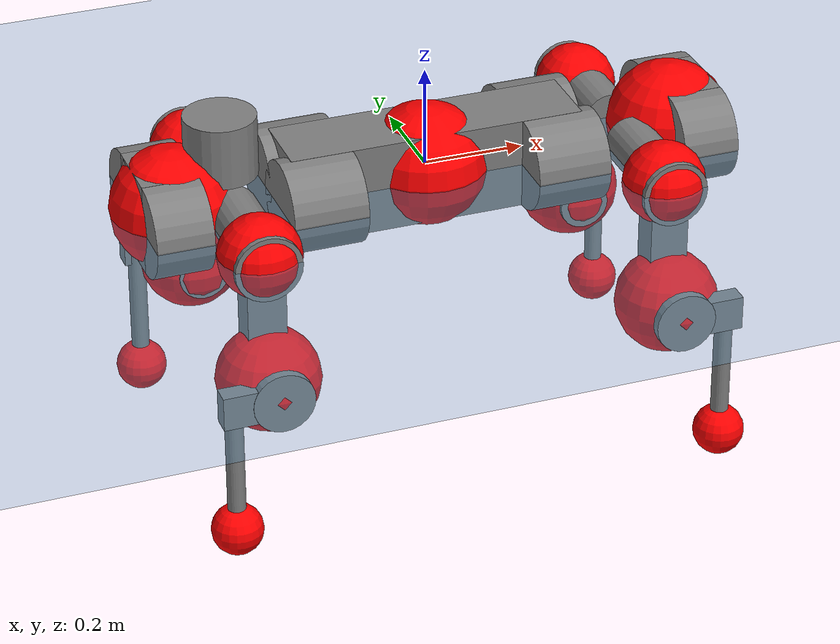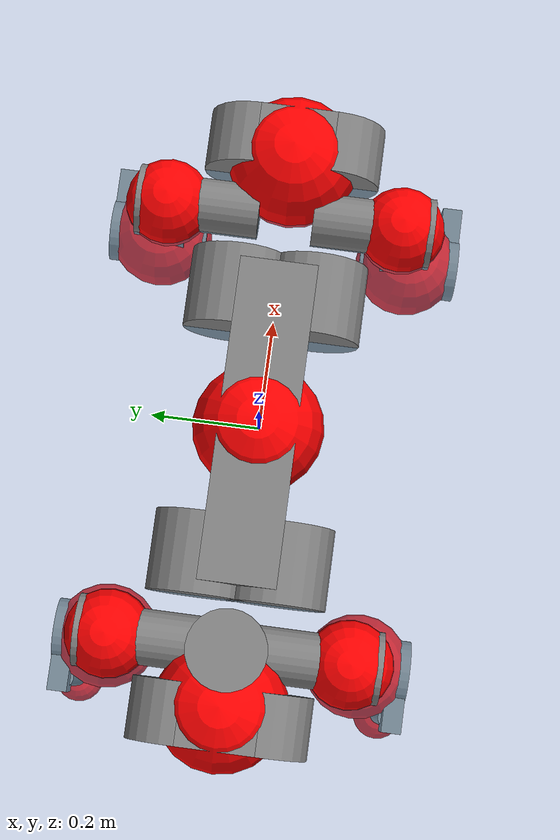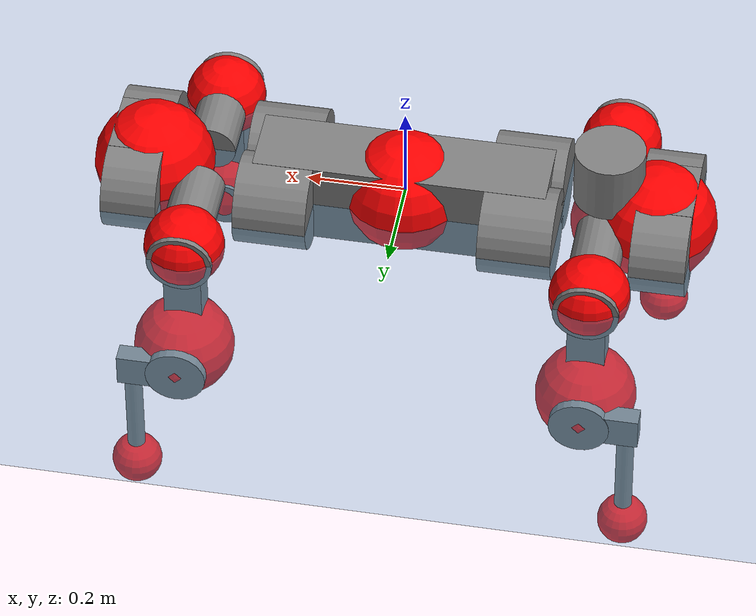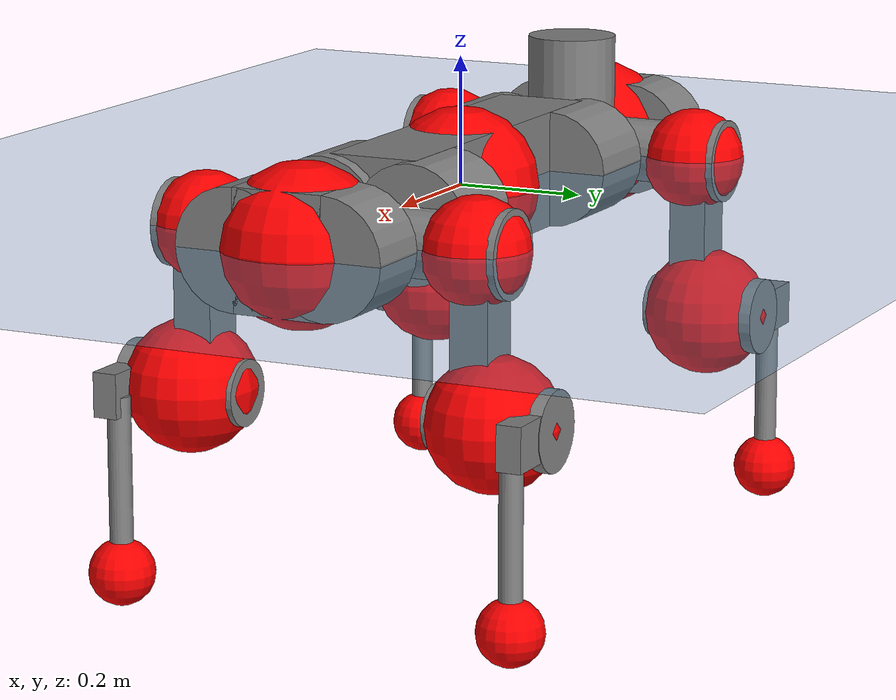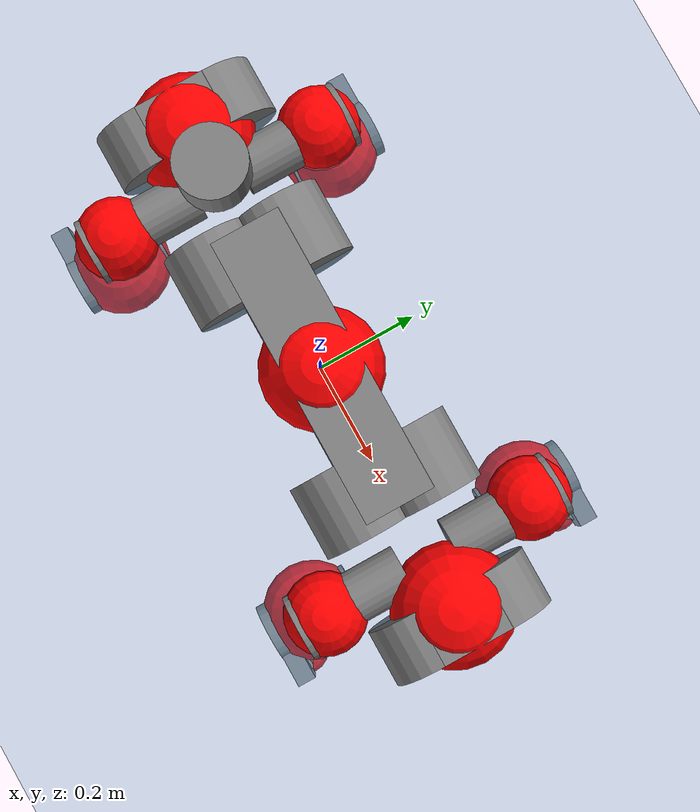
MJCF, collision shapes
<mujoco model="anymal_c">
  <compiler angle="radian" assetdir="assets" balanceinertia="true" inertiafromgeom="false"/>

  <option timestep="0.005" density="1.2" viscosity="2e-05"/>

  <size nkey="1"/>

  <visual>
    <quality shadowsize="8192"/>
    <map shadowclip="0.5"/>
  </visual>

  <default>
    <default class="/">
      <material specular="0" shininess="0.25"/>
      <geom contype="0" conaffinity="0" group="1" solref="-1000 -80"/>
      <site size="0.01 0.005 0.005" group="5"/>
      <general forcelimited="true" forcerange="-80 80" biastype="affine" gainprm="80" biasprm="0 -80 -2"/>
      <default class="anymal_c">
        <joint armature="0.01" damping="0.01" frictionloss="0.1"/>
        <default class="visual">
          <geom type="mesh" group="2"/>
          <default class="visual_zflip"/>
        </default>
        <default class="collision">
          <geom type="cylinder" group="3"/>
          <default class="foot">
            <geom size="0.03 0 0" type="sphere" condim="6" priority="1" friction="0.8 0.02 0.01" solimp="0.015 1 0.03"/>
          </default>
        </default>
      </default>
      <default class="reward_collision_sphere">
        <geom group="5" rgba="1 0 0 1"/>
      </default>
    </default>
  </default>

  <asset>
    <texture type="skybox" colorspace="auto" name="//unnamed_texture_0" builtin="gradient" rgb1="0.95 0.95 0.95" rgb2="0.95 0.95 0.95" width="100" height="600"/>
    <texture type="2d" colorspace="auto" name="texplane" builtin="checker" rgb1="0.345 0.575 0.748" rgb2="0.345 0.575 0.748" markrgb="1 1 1" width="512" height="512"/>
    <texture type="2d" colorspace="linear" name="base" file="base.png"/>
    <texture type="2d" colorspace="linear" name="top_shell" file="top_shell.png"/>
    <texture type="2d" colorspace="linear" name="bottom_shell" file="bottom_shell.png"/>
    <texture type="2d" colorspace="linear" name="remote" file="remote.png"/>
    <texture type="2d" colorspace="linear" name="hatch" file="hatch.png"/>
    <texture type="2d" colorspace="linear" name="handle" file="handle.png"/>
    <texture type="2d" colorspace="linear" name="face" file="face.png"/>
    <texture type="2d" colorspace="linear" name="battery" file="battery.png"/>
    <texture type="2d" colorspace="linear" name="lidar_cage" file="lidar_cage.png"/>
    <texture type="2d" colorspace="linear" name="depth_camera" file="depth_camera.png"/>
    <texture type="2d" colorspace="linear" name="wide_angle_camera" file="wide_angle_camera.png"/>
    <texture type="2d" colorspace="linear" name="lidar" file="lidar.png"/>
    <texture type="2d" colorspace="linear" name="drive" file="drive.png"/>
    <texture type="2d" colorspace="linear" name="hip_l" file="hip_l.png"/>
    <texture type="2d" colorspace="linear" name="shank_l" file="shank_l.png"/>
    <texture type="2d" colorspace="linear" name="foot" file="foot.png"/>
    <texture type="2d" colorspace="linear" name="thigh" file="thigh.png"/>
    <texture type="2d" colorspace="linear" name="shank_r" file="shank_r.png"/>
    <texture type="2d" colorspace="linear" name="hip_r" file="hip_r.png"/>
    <material name="MatPlane" class="/" texture="texplane" texuniform="true" texrepeat="2 2" specular="0.9" shininess="0.5"/>
    <material name="black_plastic" class="/" rgba="0.007 0.007 0.007 1"/>
    <material name="green" class="/" rgba="0.052 0.178 0.033 1"/>
    <material name="red" class="/" rgba="0.178 0.006 0.005 1"/>
    <material name="yellow" class="/" rgba="0.178 0.119 0.006 1"/>
    <material name="lwl" class="/" rgba="0.8 0.8 0.8 1"/>
    <material name="base" class="/" texture="base"/>
    <material name="top_shell" class="/" texture="top_shell"/>
    <material name="bottom_shell" class="/" texture="bottom_shell"/>
    <material name="hip_l" class="/" texture="hip_l"/>
    <material name="thigh" class="/" texture="thigh"/>
    <material name="shank_l" class="/" texture="shank_l"/>
    <material name="foot" class="/" texture="foot"/>
    <material name="hip_r" class="/" texture="hip_r"/>
    <material name="shank" class="/" texture="shank_r"/>
    <material name="hatch" class="/" texture="hatch"/>
    <material name="remote" class="/" texture="remote"/>
    <material name="handle" class="/" texture="handle"/>
    <material name="face" class="/" texture="face"/>
    <material name="depth_camera" class="/" texture="depth_camera"/>
    <material name="wide_angle_camera" class="/" texture="wide_angle_camera"/>
    <material name="battery" class="/" texture="battery"/>
    <material name="lidar_cage" class="/" texture="lidar_cage"/>
    <material name="lidar" class="/" texture="lidar"/>
    <material name="drive" class="/" texture="drive"/>
    <mesh name="base_0" class="/" file="base_0.obj"/>
    <mesh name="base_1" class="/" file="base_1.obj"/>
    <mesh name="base_2" class="/" file="base_2.obj"/>
    <mesh name="base_3" class="/" file="base_3.obj"/>
    <mesh name="base_4" class="/" file="base_4.obj"/>
    <mesh name="base_5" class="/" file="base_5.obj"/>
    <mesh name="top_shell" class="/" file="top_shell.obj"/>
    <mesh name="bottom_shell" class="/" file="bottom_shell.obj"/>
    <mesh name="remote" class="/" file="remote.obj"/>
    <mesh name="handle" class="/" file="handle.obj"/>
    <mesh name="face" class="/" file="face.obj"/>
    <mesh name="wide_angle_camera" class="/" file="wide_angle_camera.obj"/>
    <mesh name="depth_camera" class="/" file="depth_camera.obj"/>
    <mesh name="battery" class="/" file="battery.obj"/>
    <mesh name="lidar_cage" class="/" file="lidar_cage.obj"/>
    <mesh name="lidar" class="/" file="lidar.obj"/>
    <mesh name="drive" class="/" file="drive.obj"/>
    <mesh name="hip_l" class="/" file="hip_l.obj"/>
    <mesh name="thigh" class="/" file="thigh.obj"/>
    <mesh name="shank_l" class="/" file="shank_l.obj"/>
    <mesh name="foot" class="/" file="foot.obj"/>
    <mesh name="hip_r" class="/" file="hip_r.obj"/>
    <mesh name="hatch" class="/" file="hatch.obj"/>
    <mesh name="shank_r" class="/" file="shank_r.obj"/>
  </asset>

  <worldbody>
    <geom name="floor" class="/" size="100 100 0.125" type="plane" group="0" material="MatPlane"/>
    <light name="toplight_shadow" class="/" pos="0 0 5" dir="0.0990148 0.0990148 -0.990148" type="directional" ambient="0.04 0.04 0.04" diffuse="0.55 0.55 0.55" specular="0.12 0.12 0.12"/>
    <light name="toplight_fill" class="/" pos="0 0 5" dir="0.0990148 0.0990148 -0.990148" type="directional" castshadow="false" ambient="0.04 0.04 0.04" diffuse="0.3 0.3 0.3" specular="0.08 0.08 0.08"/>
    <body name="trunk" childclass="anymal_c" pos="0.00223179 0.00168597 0.000942231" quat="1 -7.23721e-05 -2.32897e-05 4.09493e-06">
      <inertial pos="0.00264029 0.00108092 0.0418702" quat="0.49716 0.503288 0.508081 0.491311" mass="20.3863" diaginertia="1.2505 0.822844 0.110579"/>
      <joint name="//unnamed_joint_0" type="free" armature="0" damping="0" frictionloss="0"/>
      <geom name="//unnamed_geom_1" class="visual" material="green" mesh="base_0"/>
      <geom name="//unnamed_geom_2" class="visual" material="yellow" mesh="base_1"/>
      <geom name="//unnamed_geom_3" class="visual" material="red" mesh="base_2"/>
      <geom name="//unnamed_geom_4" class="visual" material="black_plastic" mesh="base_3"/>
      <geom name="//unnamed_geom_5" class="visual" material="lwl" mesh="base_4"/>
      <geom name="//unnamed_geom_6" class="visual" material="base" mesh="base_5"/>
      <geom name="trunk_1" class="collision" size="0.294726 0.0711407 0.0914666" type="box"/>
      <geom name="trunk_2" class="collision" size="0.0914666 0.0736814" pos="0.2458 0.0731042 0" quat="0.707107 0 0.707107 0"/>
      <geom name="trunk_3" class="collision" size="0.0914666 0.0736814" pos="-0.2458 0.0731042 0" quat="0.707107 0 0.707107 0"/>
      <geom name="trunk_4" class="collision" size="0.0914666 0.0736814" pos="0.2458 -0.0731042 0" quat="0.707107 0 0.707107 0"/>
      <geom name="trunk_5" class="collision" size="0.0914666 0.0736814" pos="-0.2458 -0.0731042 0" quat="0.707107 0 0.707107 0"/>
      <geom name="//unnamed_geom_12" class="visual" material="top_shell" mesh="top_shell"/>
      <geom name="//unnamed_geom_13" class="visual" material="bottom_shell" mesh="bottom_shell"/>
      <geom name="//unnamed_geom_14" class="visual" material="remote" mesh="remote"/>
      <geom name="//unnamed_geom_15" class="visual" material="handle" mesh="handle"/>
      <geom name="//unnamed_geom_16" class="visual" pos="0.468433 0 0" quat="1 0 0 0" material="face" mesh="face"/>
      <geom name="trunk_6" class="collision" size="0.0558962 0.0711407 0.0914666" pos="0.530589 0 0" type="box"/>
      <geom name="//unnamed_geom_18" class="collision" size="0.0914666 0.0558962" pos="0.530589 0.0731042 0" quat="0.707107 0 0.707107 0"/>
      <geom name="//unnamed_geom_19" class="collision" size="0.0914666 0.0558962" pos="0.530589 -0.0731042 0" quat="0.707107 0 0.707107 0"/>
      <geom name="//unnamed_geom_20" class="visual" pos="0.521707 0 -0.0235899" quat="0.965926 0 0.258819 0" material="depth_camera" mesh="depth_camera"/>
      <geom name="//unnamed_geom_21" class="visual" pos="0.579749 0 0.0130901" material="wide_angle_camera" mesh="wide_angle_camera"/>
      <geom name="//unnamed_geom_22" class="visual_zflip" pos="-0.468433 0 0" quat="0 0 0 1" material="face" mesh="face"/>
      <geom name="trunk_7" class="collision" size="0.0558962 0.0711407 0.0914666" pos="-0.530589 0 0" quat="0 0 0 1" type="box"/>
      <geom name="//unnamed_geom_24" class="collision" size="0.0914666 0.0558962" pos="-0.530589 -0.0731042 0" quat="0 -0.707107 0 0.707107"/>
      <geom name="//unnamed_geom_25" class="collision" size="0.0914666 0.0558962" pos="-0.530589 0.0731042 0" quat="0 -0.707107 0 0.707107"/>
      <geom name="//unnamed_geom_26" class="visual" pos="-0.521707 0 -0.0235899" quat="0 -0.258819 0 0.965926" material="depth_camera" mesh="depth_camera"/>
      <geom name="//unnamed_geom_27" class="visual_zflip" pos="-0.579749 0 0.0130901" quat="0 0 0 1" material="wide_angle_camera" mesh="wide_angle_camera"/>
      <geom name="//unnamed_geom_28" class="visual" material="battery" mesh="battery"/>
      <geom name="//unnamed_geom_29" class="visual" pos="0 0.0787146 0.0273453" quat="0.683013 -0.183013 0.183013 0.683013" material="depth_camera" mesh="depth_camera"/>
      <geom name="//unnamed_geom_30" class="visual" pos="0 -0.0787146 0.0273453" quat="0.683013 0.183013 0.183013 -0.683013" material="depth_camera" mesh="depth_camera"/>
      <geom name="//unnamed_geom_31" class="visual" pos="-0.411362 0 0.0642702" quat="1 0 0 0" material="lidar_cage" mesh="lidar_cage"/>
      <geom name="trunk_8" class="collision" size="0.0711407 0.0609777" pos="-0.411362 0 0.116736"/>
      <geom name="//unnamed_geom_33" class="visual" pos="-0.411362 -3.36966e-05 0.124343" quat="0.707107 0 0 -0.707107" material="lidar" mesh="lidar"/>
      <geom name="//unnamed_geom_34" class="visual" pos="0.338922 0.108552 2.93115e-09" quat="0.258819 0.965926 0 0" material="drive" mesh="drive"/>
      <geom name="//unnamed_geom_35" class="visual" pos="0.338922 -0.108552 -2.93115e-09" quat="0.258819 -0.965926 0 0" material="drive" mesh="drive"/>
      <geom name="//unnamed_geom_36" class="visual" pos="-0.338922 0.108552 -2.93115e-09" quat="0 0 0.965926 -0.258819" material="drive" mesh="drive"/>
      <geom name="//unnamed_geom_37" class="visual" pos="-0.338922 -0.108552 2.93115e-09" quat="0 0 -0.965926 -0.258819" material="drive" mesh="drive"/>
      <geom name="//unnamed_geom_38" class="visual" pos="0.131093 0 0.063833" quat="1 0 0 0" material="hatch" mesh="hatch"/>
      <geom name="//unnamed_geom_39" class="reward_collision_sphere" size="0.121955"/>
      <geom name="//unnamed_geom_40" class="reward_collision_sphere" size="0.121955" pos="0.508552 0 0"/>
      <geom name="//unnamed_geom_41" class="reward_collision_sphere" size="0.121955" pos="-0.508552 0 0"/>
      <site name="imu" pos="0.283782 0.013303 0.0326515" size="0.010163"/>
      <camera name="track" pos="0 -2.08869 0" quat="0.707107 0.707107 0 0" mode="trackcom"/>
      <camera name="ego_camera" pos="0.508552 0 -0.034977" quat="-0.5 -0.5 0.5 0.5"/>
      <body name="LF_HIP" pos="0.338155 0.108409 -0.00318704" quat="0.25964 0.965705 0.000363852 -0.000755783">
        <inertial pos="0.0622184 -0.0173789 -0.00769188" quat="-0.127981 0.71138 -0.135579 0.677627" mass="2.93858" diaginertia="0.0108846 0.00592432 0.00171199"/>
        <joint name="LF_HAA" pos="0 0 0" axis="0.99999 -0.00419212 -0.00180047" range="-0.699313 0.486379" armature="0.00941213" damping="0.00837186" frictionloss="0.113498"/>
        <geom name="//unnamed_geom_42" class="visual" pos="0 0.000172427 -2.83209e-05" quat="0.258819 -0.965926 0 0" material="hip_l" mesh="hip_l"/>
        <geom name="//unnamed_geom_43" class="visual" pos="0.0676939 -0.0808359 -0.0454138" quat="0.183013 -0.683013 0.683013 0.183013" material="drive" mesh="drive"/>
        <geom name="//unnamed_geom_44" class="collision" size="0.0508148 0.0711407" pos="0.0676939 -0.0124902 -0.0060379" quat="-0.353553 -0.612372 0.612372 -0.353553"/>
        <body name="LF_THIGH" pos="0.0652133 -0.0769657 -0.0387983" quat="0.183428 -0.682616 0.68308 0.183824">
          <inertial pos="0.0354955 0.000226129 -0.216054" quat="0.993012 -0.00979475 -0.0883902 0.0775792" mass="3.1468" diaginertia="0.0547828 0.0366125 0.00210854"/>
          <joint name="LF_HFE" pos="0 0 0" axis="0.9999 -0.013326 0.00466013" range="-3.11006 3.1399" armature="0.0115929" damping="0" frictionloss="0.0880686"/>
          <geom name="//unnamed_geom_45" class="visual" pos="0.00170648 2.68901e-06 0" quat="0.707107 0 0 -0.707107" material="thigh" mesh="thigh"/>
          <geom name="//unnamed_geom_46" class="collision" size="0.0660592 0.0406518" pos="0.0452046 0 0" quat="0.5 0.5 -0.5 -0.5"/>
          <geom name="//unnamed_geom_47" class="collision" size="0.0381111 0.0304889 0.143617" pos="0.0339035 0 -0.123568" quat="0.707107 0 0 -0.707107" type="box"/>
          <geom name="//unnamed_geom_48" class="visual" pos="0.113351 0 -0.249211" quat="1 0 0 0" material="drive" mesh="drive"/>
          <geom name="//unnamed_geom_49" class="collision" size="0.0508148 0.0711407" pos="0.0342425 0 -0.249211" quat="0.707107 0 0.707107 0"/>
          <geom name="//unnamed_geom_50" class="reward_collision_sphere" size="0.0813036" pos="0.0282529 0 0"/>
          <body name="LF_SHANK" pos="0.11282 -0.00136392 -0.249618" quat="0.999999 -9.80886e-06 0.000870251 0.00101722">
            <inertial pos="0.00848532 -0.06391 -0.0705561" quat="0.993091 -0.113327 -0.00927425 -0.0290098" mass="0.660892" diaginertia="0.0187075 0.0119377 0.000573239"/>
            <joint name="LF_KFE" pos="0 0 0" axis="0.999986 0.00524171 0.000565552" range="-3.1301 3.15371" armature="0.0105764" damping="0" frictionloss="0.096303"/>
            <geom name="//unnamed_geom_51" class="visual" pos="0.000556446 0.002967 0" quat="0.707107 0 0 -0.707107" material="shank_l" mesh="shank_l"/>
            <geom name="LF_kfe_act" class="collision" size="0.0609777 0.0203259" pos="0.0226023 0 0" quat="0.5 0.5 -0.5 -0.5"/>
            <geom name="//unnamed_geom_53" class="collision" size="0.0584359 0.0343 0.0193096" pos="0.0226023 -0.0600488 0" quat="0.5 0.5 -0.5 -0.5" type="box"/>
            <geom name="//unnamed_geom_54" class="visual" pos="0.0147479 -0.090894 -0.295529" quat="0.382683 0 0 -0.92388" material="foot" mesh="foot"/>
            <geom name="LF_calf" class="collision" size="0.0177852 0.143554" pos="0.014748 -0.0918502 -0.147765" quat="0.707107 0 0 -0.707107"/>
            <geom name="LF_foot" class="foot" size="0.0336653" pos="0.014748 -0.0918502 -0.275855" quat="0.707107 0 0 -0.707107"/>
            <geom name="//unnamed_geom_57" class="reward_collision_sphere" size="0.10163" pos="-0.0565058 0 0"/>
            <geom name="//unnamed_geom_58" class="reward_collision_sphere" size="0.0508148" pos="0.014748 -0.0918502 -0.275855"/>
            <site name="LF_foot" class="foot" pos="0.014748 -0.0918502 -0.275855" quat="0.707107 0 0 -0.707107" size="0.010163"/>
          </body>
        </body>
      </body>
      <body name="RF_HIP" pos="0.337806 -0.107783 -0.00170445" quat="0.258478 -0.966017 1.1679e-05 0.00033585">
        <inertial pos="0.0655701 0.0173108 -0.00927474" quat="0.145143 0.673186 0.121878 0.714773" mass="2.94807" diaginertia="0.0111399 0.00602113 0.001714"/>
        <joint name="RF_HAA" pos="0 0 0" axis="0.999918 -0.00382555 -0.0121875" range="-0.530539 0.702142" armature="0.0101893" damping="0.00413294" frictionloss="0.0887147"/>
        <geom name="//unnamed_geom_59" class="visual" pos="0 -0.000172425 -2.83208e-05" quat="0.258819 0.965926 0 0" material="hip_r" mesh="hip_r"/>
        <geom name="//unnamed_geom_60" class="visual" pos="0.0676939 0.0808359 -0.0454138" quat="0.183013 0.683013 0.683013 -0.183013" material="drive" mesh="drive"/>
        <geom name="//unnamed_geom_61" class="collision" size="0.0508148 0.0711407" pos="0.0676939 0.0124902 -0.0060379" quat="-0.353553 0.612372 0.612372 0.353553"/>
        <body name="RF_THIGH" pos="0.0682524 0.0739458 -0.0348936" quat="0.183018 0.683545 0.682449 -0.183123">
          <inertial pos="0.0324746 0.000716023 -0.214075" quat="0.992693 -0.00620272 -0.0806483 0.089548" mass="3.2683" diaginertia="0.0564494 0.0373137 0.00216437"/>
          <joint name="RF_HFE" pos="0 0 0" axis="0.999937 -0.0067492 0.00893098" stiffness="0.0112909" range="-3.12191 3.18798" armature="0.00982555" damping="0" frictionloss="0.0994675"/>
          <geom name="//unnamed_geom_62" class="visual" pos="0.00170648 2.68901e-06 0" quat="0.707107 0 0 -0.707107" material="thigh" mesh="thigh"/>
          <geom name="//unnamed_geom_63" class="collision" size="0.0660592 0.0406518" pos="0.0452046 0 0" quat="0.5 0.5 0.5 0.5"/>
          <geom name="//unnamed_geom_64" class="collision" size="0.0381111 0.0304889 0.143617" pos="0.0339035 0 -0.123568" quat="0.707107 0 0 0.707107" type="box"/>
          <geom name="//unnamed_geom_65" class="visual" pos="0.113351 0 -0.249211" quat="1 0 0 0" material="drive" mesh="drive"/>
          <geom name="//unnamed_geom_66" class="collision" size="0.0508148 0.0711407" pos="0.0342425 0 -0.249211" quat="0.707107 0 0.707107 0"/>
          <geom name="//unnamed_geom_67" class="reward_collision_sphere" size="0.0813036" pos="0.0282529 0 0"/>
          <body name="RF_SHANK" pos="0.114433 0.000887549 -0.246006" quat="1 -0.000134873 -0.000134286 -0.000654713">
            <inertial pos="0.00691225 0.0611649 -0.0678612" quat="0.993194 0.113412 -0.000768876 0.0265133" mass="0.604144" diaginertia="0.0195045 0.0119448 0.000587805"/>
            <joint name="RF_KFE" pos="0 0 0" axis="0.999921 -0.0125514 1.77881e-05" stiffness="0.00665179" range="-3.17505 3.15515" armature="0.00969759" damping="0.0180607" frictionloss="0.113397"/>
            <geom name="//unnamed_geom_68" class="visual" pos="0.000556443 -0.00296699 0" quat="0.707107 0 0 0.707107" material="shank" mesh="shank_r"/>
            <geom name="RF_kfe_act" class="collision" size="0.0609777 0.0203259" pos="0.0226023 0 0" quat="0.5 0.5 0.5 0.5"/>
            <geom name="//unnamed_geom_70" class="collision" size="0.0584359 0.0343 0.0193096" pos="0.0226023 0.0600488 0" quat="0.5 0.5 0.5 0.5" type="box"/>
            <geom name="//unnamed_geom_71" class="visual" pos="0.0147481 0.090894 -0.295529" quat="0.382683 0 0 0.92388" material="foot" mesh="foot"/>
            <geom name="RF_calf" class="collision" size="0.0177852 0.143554" pos="0.014748 0.0918502 -0.147765" quat="0.707107 0 0 0.707107"/>
            <geom name="RF_foot" class="foot" size="0.0297651" pos="0.014748 0.0918502 -0.275855" quat="0.707107 0 0 0.707107"/>
            <geom name="//unnamed_geom_74" class="reward_collision_sphere" size="0.10163" pos="-0.0565058 0 0"/>
            <geom name="//unnamed_geom_75" class="reward_collision_sphere" size="0.0508148" pos="0.014748 0.0918502 -0.275855"/>
            <site name="RF_foot" class="foot" pos="0.014748 0.0918502 -0.275855" quat="0.707107 0 0 0.707107" size="0.010163"/>
          </body>
        </body>
      </body>
      <body name="LH_HIP" pos="-0.338071 0.106364 -0.00083474" quat="-5.9393e-05 -0.000111475 0.965958 -0.258698">
        <inertial pos="0.0659031 0.0150105 -0.00693894" quat="0.140553 0.675228 0.118974 0.714253" mass="2.81687" diaginertia="0.0106775 0.00605586 0.00162096"/>
        <joint name="LH_HAA" pos="0 0 0" axis="0.999916 0.00422085 0.0122615" stiffness="0.00030921" range="-0.437172 0.758286" armature="0.0100662" damping="0.0101502" frictionloss="0.0952054"/>
        <geom name="//unnamed_geom_76" class="visual" pos="0 -0.000172425 -2.83208e-05" quat="-0.258819 -0.965926 0 0" material="hip_r" mesh="hip_r"/>
        <geom name="//unnamed_geom_77" class="visual" pos="0.0676939 0.0808359 -0.0454138" quat="0.183013 0.683013 0.683013 -0.183013" material="drive" mesh="drive"/>
        <geom name="//unnamed_geom_78" class="collision" size="0.0508148 0.0711407" pos="0.0676939 0.0124902 -0.0060379" quat="-0.353553 0.612372 0.612372 0.353553"/>
        <body name="LH_THIGH" pos="0.0694318 0.0779466 -0.0352563" quat="0.182183 0.683326 0.683082 -0.182409">
          <inertial pos="0.0347006 0.00153014 -0.215574" quat="0.993318 -0.0164865 -0.0730421 0.0878225" mass="3.32768" diaginertia="0.0556697 0.03804 0.00218394"/>
          <joint name="LH_HFE" pos="0 0 0" axis="0.999933 0.00922288 -0.00695391" range="-3.0854 3.1954" armature="0.0111017" damping="0.0151957" frictionloss="0.114439"/>
          <geom name="//unnamed_geom_79" class="visual" pos="0.00170648 2.68901e-06 0" quat="0.707107 0 0 -0.707107" material="thigh" mesh="thigh"/>
          <geom name="//unnamed_geom_80" class="collision" size="0.0660592 0.0406518" pos="0.0452046 0 0" quat="0.5 0.5 -0.5 -0.5"/>
          <geom name="//unnamed_geom_81" class="collision" size="0.0381111 0.0304889 0.143617" pos="0.0339035 0 -0.123568" quat="0.707107 0 0 -0.707107" type="box"/>
          <geom name="//unnamed_geom_82" class="visual" pos="0.113351 0 -0.249211" quat="1 0 0 0" material="drive" mesh="drive"/>
          <geom name="//unnamed_geom_83" class="collision" size="0.0508148 0.0711407" pos="0.0342425 0 -0.249211" quat="0.707107 0 0.707107 0"/>
          <geom name="//unnamed_geom_84" class="reward_collision_sphere" size="0.0813036" pos="0.0282529 0 0"/>
          <body name="LH_SHANK" pos="0.110676 0.0021539 -0.250685" quat="1 -3.72303e-05 -0.000565728 0.00026038">
            <inertial pos="0.00513596 0.0640201 -0.069855" quat="0.993011 0.113006 0.00917261 0.0327886" mass="0.605595" diaginertia="0.0188759 0.0112411 0.000575157"/>
            <joint name="LH_KFE" pos="0 0 0" axis="0.999986 0.000103516 0.00520706" range="-3.14673 3.08392" armature="0.0102236" damping="0.0111527" frictionloss="0.08781"/>
            <geom name="//unnamed_geom_85" class="visual" pos="0.000556443 -0.00296699 0" quat="-0.707107 0 0 -0.707107" material="shank" mesh="shank_r"/>
            <geom name="LH_kfe_act" class="collision" size="0.0609777 0.0203259" pos="0.0226023 0 0" quat="0.5 0.5 -0.5 -0.5"/>
            <geom name="//unnamed_geom_87" class="collision" size="0.0584359 0.0343 0.0193096" pos="0.0226023 0.0600488 0" quat="0.5 0.5 -0.5 -0.5" type="box"/>
            <geom name="//unnamed_geom_88" class="visual" pos="0.0147481 0.090894 -0.295529" quat="-0.382683 0 0 -0.92388" material="foot" mesh="foot"/>
            <geom name="LH_calf" class="collision" size="0.0177852 0.143554" pos="0.014748 0.0918502 -0.147765" quat="0.707107 0 0 -0.707107"/>
            <geom name="LH_foot" class="foot" size="0.0279776" pos="0.014748 0.0918502 -0.275855" quat="0.707107 0 0 -0.707107"/>
            <geom name="//unnamed_geom_91" class="reward_collision_sphere" size="0.10163" pos="-0.0565058 0 0"/>
            <geom name="//unnamed_geom_92" class="reward_collision_sphere" size="0.0508148" pos="0.014748 0.0918502 -0.275855"/>
            <site name="LH_foot" class="foot" pos="0.014748 0.0918502 -0.275855" quat="0.707107 0 0 -0.707107" size="0.010163"/>
          </body>
        </body>
      </body>
      <body name="RH_HIP" pos="-0.340436 -0.107373 0.000689325" quat="-0.000409843 0.000433237 -0.965855 -0.259084">
        <inertial pos="0.0668513 -0.0135721 -0.00734381" quat="-0.120821 0.711422 -0.138886 0.678226" mass="2.94146" diaginertia="0.0112325 0.00636742 0.00175236"/>
        <joint name="RH_HAA" pos="0 0 0" axis="0.999972 0.00224484 -0.00710512" range="-0.730103 0.517668" armature="0.00945304" damping="0.0229595" frictionloss="0.10208"/>
        <geom name="//unnamed_geom_93" class="visual" pos="0 0.000172427 -2.83209e-05" quat="-0.258819 0.965926 0 0" material="hip_l" mesh="hip_l"/>
        <geom name="//unnamed_geom_94" class="visual" pos="0.0676939 -0.0808359 -0.0454138" quat="-0.183013 0.683013 -0.683013 -0.183013" material="drive" mesh="drive"/>
        <geom name="//unnamed_geom_95" class="collision" size="0.0508148 0.0711407" pos="0.0676939 -0.0124902 -0.0060379" quat="0.353553 0.612372 -0.612372 0.353553"/>
        <body name="RH_THIGH" pos="0.0665534 -0.0767622 -0.0347094" quat="-0.183758 0.682844 -0.682988 -0.182985">
          <inertial pos="0.0355842 0.00109117 -0.213628" quat="0.993289 -0.00194694 -0.0827453 0.0807803" mass="3.2327" diaginertia="0.0564282 0.0385411 0.00217647"/>
          <joint name="RH_HFE" pos="0 0 0" axis="0.999996 -0.00153362 -0.00240639" range="-3.13358 3.17633" armature="0.0113202" damping="0" frictionloss="0.0894895"/>
          <geom name="//unnamed_geom_96" class="visual" pos="0.00170648 2.68901e-06 0" quat="0.707107 0 0 -0.707107" material="thigh" mesh="thigh"/>
          <geom name="//unnamed_geom_97" class="collision" size="0.0660592 0.0406518" pos="0.0452046 0 0" quat="0.5 0.5 0.5 0.5"/>
          <geom name="//unnamed_geom_98" class="collision" size="0.0381111 0.0304889 0.143617" pos="0.0339035 0 -0.123568" quat="0.707107 0 0 0.707107" type="box"/>
          <geom name="//unnamed_geom_99" class="visual" pos="0.113351 0 -0.249211" quat="1 0 0 0" material="drive" mesh="drive"/>
          <geom name="//unnamed_geom_100" class="collision" size="0.0508148 0.0711407" pos="0.0342425 0 -0.249211" quat="0.707107 0 0.707107 0"/>
          <geom name="//unnamed_geom_101" class="reward_collision_sphere" size="0.0813036" pos="0.0282529 0 0"/>
          <body name="RH_SHANK" pos="0.112693 0.00103057 -0.248492" quat="1 3.72919e-05 4.09521e-05 -2.36806e-05">
            <inertial pos="0.00393983 -0.0652705 -0.0687797" quat="0.992605 -0.118302 -0.00404835 -0.0269037" mass="0.645374" diaginertia="0.0183079 0.0119782 0.000579371"/>
            <joint name="RH_KFE" pos="0 0 0" axis="1 -0.000221348 0.00075416" range="-3.14318 3.17269" armature="0.0100015" damping="0.00949446" frictionloss="0.110012"/>
            <geom name="//unnamed_geom_102" class="visual" pos="0.000556446 0.002967 0" quat="0.707107 0 0 -0.707107" material="shank_l" mesh="shank_l"/>
            <geom name="RH_kfe_act" class="collision" size="0.0609777 0.0203259" pos="0.0226023 0 0" quat="0.5 0.5 0.5 0.5"/>
            <geom name="//unnamed_geom_104" class="collision" size="0.0584359 0.0343 0.0193096" pos="0.0226023 -0.0600488 0" quat="0.5 0.5 0.5 0.5" type="box"/>
            <geom name="//unnamed_geom_105" class="visual" pos="0.0147479 -0.090894 -0.295529" quat="0.382683 0 0 -0.92388" material="foot" mesh="foot"/>
            <geom name="RH_calf" class="collision" size="0.0177852 0.143554" pos="0.014748 -0.0918502 -0.147765" quat="0.707107 0 0 0.707107"/>
            <geom name="RH_foot" class="foot" size="0.0315371" pos="0.014748 -0.0918502 -0.275855" quat="0.707107 0 0 0.707107"/>
            <geom name="//unnamed_geom_108" class="reward_collision_sphere" size="0.10163" pos="-0.0565058 0 0"/>
            <geom name="//unnamed_geom_109" class="reward_collision_sphere" size="0.0508148" pos="0.014748 -0.0918502 -0.275855"/>
            <site name="RH_foot" class="foot" pos="0.014748 -0.0918502 -0.275855" quat="0.707107 0 0 0.707107" size="0.010163"/>
          </body>
        </body>
      </body>
    </body>
  </worldbody>

  <contact>
    <pair class="/" geom1="floor" geom2="LF_foot" name="//unnamed_contact_0"/>
    <pair class="/" geom1="floor" geom2="RF_foot" name="//unnamed_contact_1"/>
    <pair class="/" geom1="floor" geom2="LH_foot" name="//unnamed_contact_2"/>
    <pair class="/" geom1="floor" geom2="RH_foot" name="//unnamed_contact_3"/>
  </contact>

  <actuator>
    <general name="LF_HAA" class="/" joint="LF_HAA" forcerange="-81.0167 81.0167" gainprm="81.9351" biasprm="0 -81.9351 -2.15071"/>
    <general name="LF_HFE" class="/" joint="LF_HFE" forcerange="-73.6378 73.6378" gainprm="81.9351" biasprm="0 -81.9351 -2.15071"/>
    <general name="LF_KFE" class="/" joint="LF_KFE" forcerange="-88.1362 88.1362" gainprm="81.9351" biasprm="0 -81.9351 -2.15071"/>
    <general name="RF_HAA" class="/" joint="RF_HAA" forcerange="-83.3281 83.3281" gainprm="81.9351" biasprm="0 -81.9351 -2.15071"/>
    <general name="RF_HFE" class="/" joint="RF_HFE" forcerange="-80.5183 80.5183" gainprm="81.9351" biasprm="0 -81.9351 -2.15071"/>
    <general name="RF_KFE" class="/" joint="RF_KFE" forcerange="-89.9891 89.9891" gainprm="81.9351" biasprm="0 -81.9351 -2.15071"/>
    <general name="LH_HAA" class="/" joint="LH_HAA" forcerange="-81.175 81.175" gainprm="81.9351" biasprm="0 -81.9351 -2.15071"/>
    <general name="LH_HFE" class="/" joint="LH_HFE" forcerange="-90.4657 90.4657" gainprm="81.9351" biasprm="0 -81.9351 -2.15071"/>
    <general name="LH_KFE" class="/" joint="LH_KFE" forcerange="-74.6834 74.6834" gainprm="81.9351" biasprm="0 -81.9351 -2.15071"/>
    <general name="RH_HAA" class="/" joint="RH_HAA" forcerange="-82.939 82.939" gainprm="81.9351" biasprm="0 -81.9351 -2.15071"/>
    <general name="RH_HFE" class="/" joint="RH_HFE" forcerange="-85.5547 85.5547" gainprm="81.9351" biasprm="0 -81.9351 -2.15071"/>
    <general name="RH_KFE" class="/" joint="RH_KFE" forcerange="-77.9764 77.9764" gainprm="81.9351" biasprm="0 -81.9351 -2.15071"/>
  </actuator>

  <sensor>
    <gyro site="imu" name="imu_angular_velocity"/>
    <velocimeter site="imu" name="imu_linear_velocity"/>
    <framelinvel objtype="site" objname="LF_foot" name="LF_foot_global_linear_velocity"/>
    <framelinvel objtype="site" objname="RF_foot" name="RF_foot_global_linear_velocity"/>
    <framelinvel objtype="site" objname="LH_foot" name="LH_foot_global_linear_velocity"/>
    <framelinvel objtype="site" objname="RH_foot" name="RH_foot_global_linear_velocity"/>
  </sensor>

  <keyframe>
    <key name="home" qpos="0 0 0.55 1 0 0 0 0 0.4 -0.8 0 -0.4 0.8 0 -0.4 0.8 0 0.4 -0.8"/>
  </keyframe>
</mujoco>
